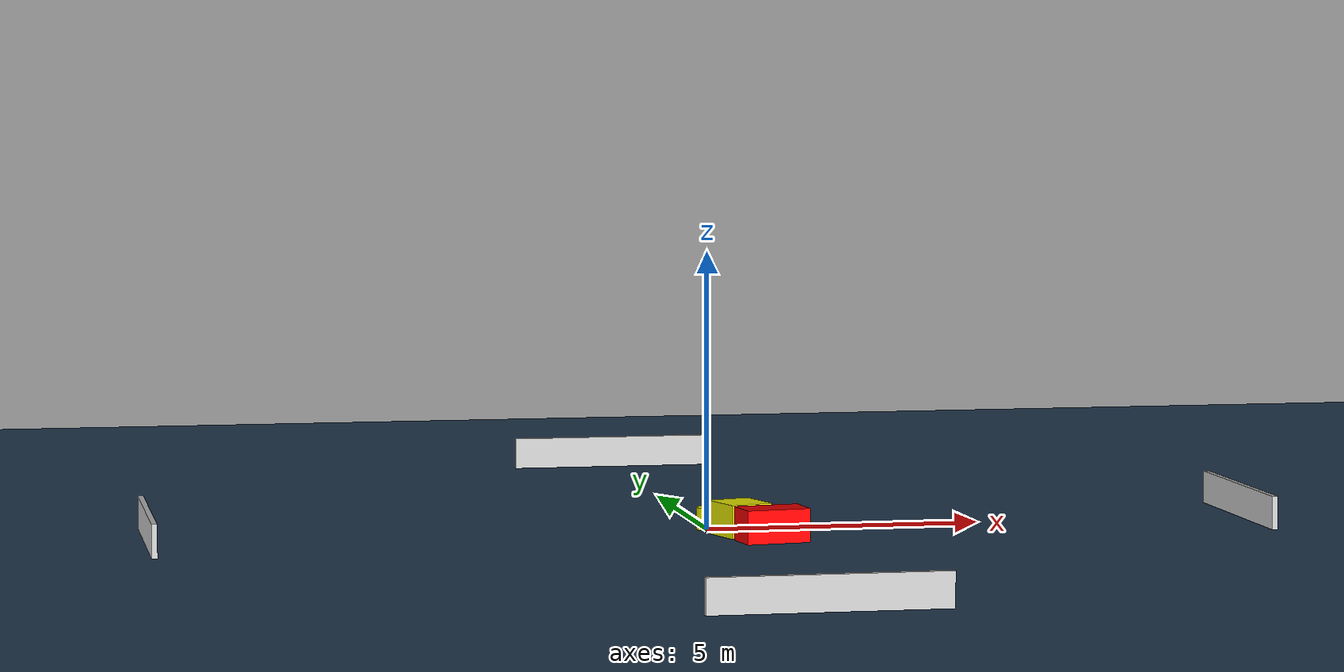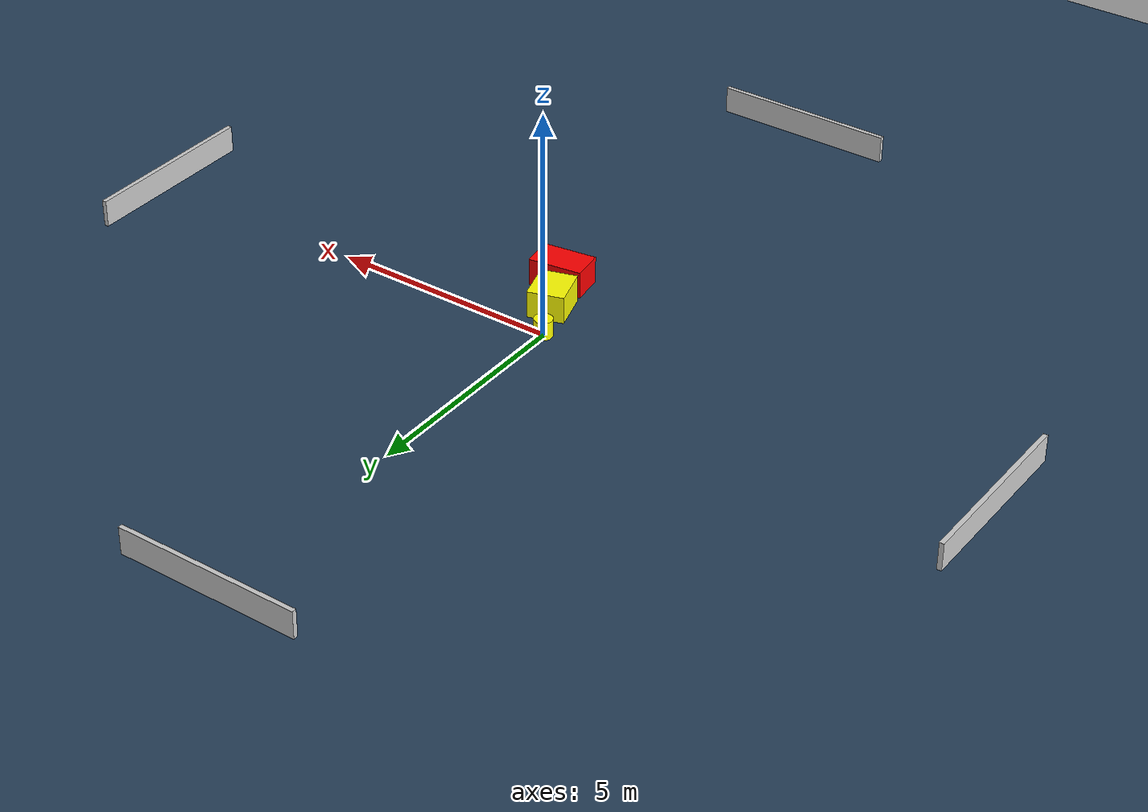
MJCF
<?xml version="1.0" ?>
<mujoco model="generated_environment">
  <option timestep="0.01" integrator="RK4" cone="elliptic"/>
  <default>
    <geom density="1"/>
  </default>
  <asset>
    <texture builtin="gradient" height="3072" name="skybox" rgb1="0.3 0.5 0.7" rgb2="0 0 0" type="skybox" width="512"/>
    <texture builtin="checker" height="300" name="groundplane" rgb1="0.2 0.3 0.4" rgb2="0.1 0.2 0.3" type="2d" width="300"/>
    <material name="groundplane" reflectance="0.2" texrepeat="5 5" texture="groundplane"/>
  </asset>
  <worldbody>
    <light dir="0 0 -1" directional="true" pos="0 0 1.5"/>
    <geom condim="3" friction="0.5 0.005 0.001" material="groundplane" name="floor" pos="0 0 0" size="0 0 0.05" type="plane"/>
    <body name="walls">
      <geom name="wall_1" condim="4" pos="-10.0 0.0 0.3" rgba="0.800000011920929 0.800000011920929 0.800000011920929 1.0" size="0.05 2.0 0.3" type="box"/>
      <geom name="wall_2" condim="4" pos="10.0 0.0 0.3" rgba="0.800000011920929 0.800000011920929 0.800000011920929 1.0" size="0.05 2.0 0.3" type="box"/>
      <geom name="wall_3" condim="4" pos="0.0 -10.0 0.3" rgba="0.800000011920929 0.800000011920929 0.800000011920929 1.0" size="2.0 0.05 0.3" type="box"/>
      <geom name="wall_4" condim="4" pos="0.0 10.0 0.3" rgba="0.800000011920929 0.800000011920929 0.800000011920929 1.0" size="2.0 0.05 0.3" type="box"/>
    </body>
    <body name="robot">
      <joint name="joint_x" type="slide" pos="0 0 0" axis="1 0 0"/>
      <joint name="joint_y" type="slide" pos="0 0 0" axis="0 1 0"/>
      <geom name="robot" type="cylinder" pos="0.0 0.0 0.2" size="0.2 0.2 0.0" mass="5.0" friction="1.0 0.005 0.0001" condim="4" rgba="1.0 1.0 0.0 1.0"/>
    </body>
    <body name="obstacle_1_movable">
      <geom name="obstacle_1_movable" condim="4" pos="0.416314431313927 -0.8899666375556756 0.3" euler="0 0 286.92449622925454" friction="0.0 0.005 0.001" rgba="1.0 1.0 0.0 1.0" size="0.4469685129930143 0.3943241731211664 0.3" type="box" mass="0.1"/>
      <joint type="free"/>
    </body>
    <body name="obstacle_2_static">
      <geom name="obstacle_2_static" condim="4" pos="0.81377014931459 -1.7993775293636074 0.3" euler="0 0 8.079535816890946" friction="0.0 0.005 0.001" rgba="1.0 0.0 0.0 1.0" size="0.5849507817335842 0.3498321293694857 0.3" type="box"/>
    </body>
  </worldbody>
  <actuator>
    <motor name="actuator_x" joint="joint_x" gear="1" ctrlrange="-1 1"/>
    <motor name="actuator_y" joint="joint_y" gear="1" ctrlrange="-1 1"/>
  </actuator>
</mujoco>
